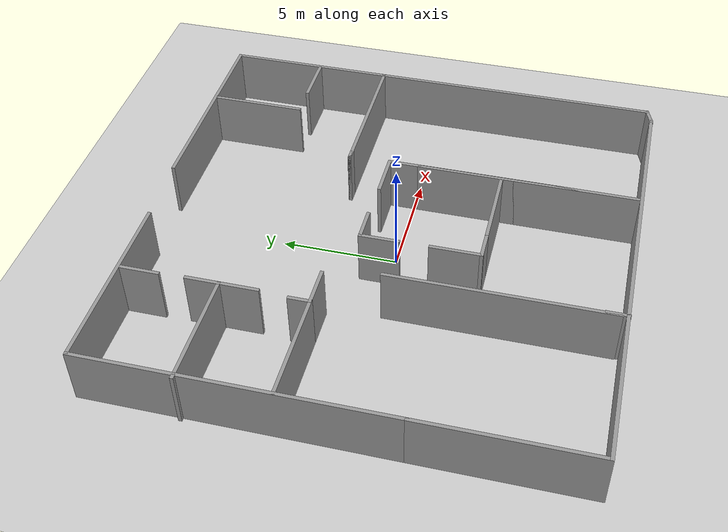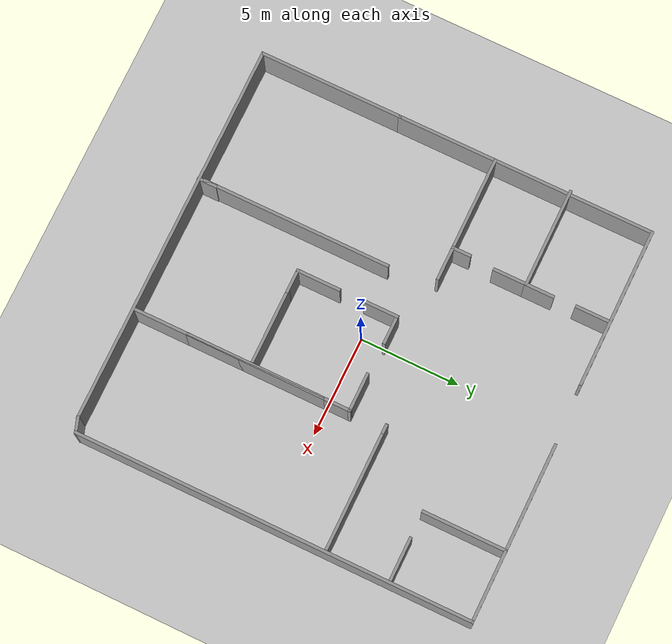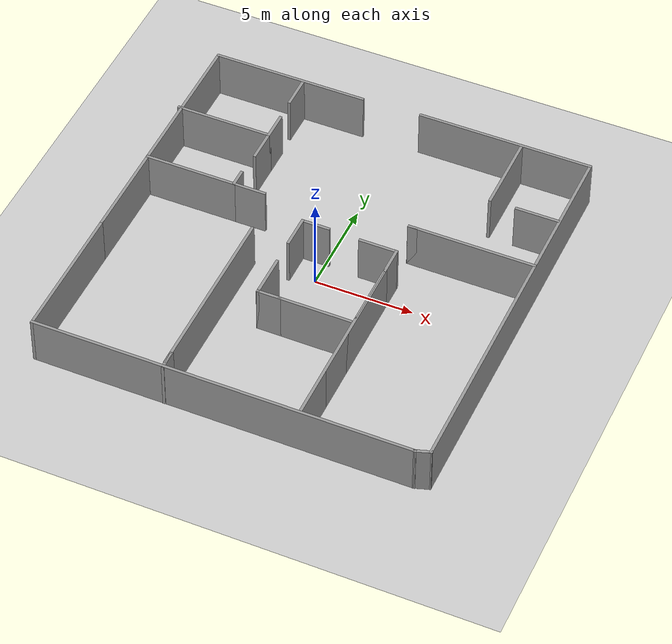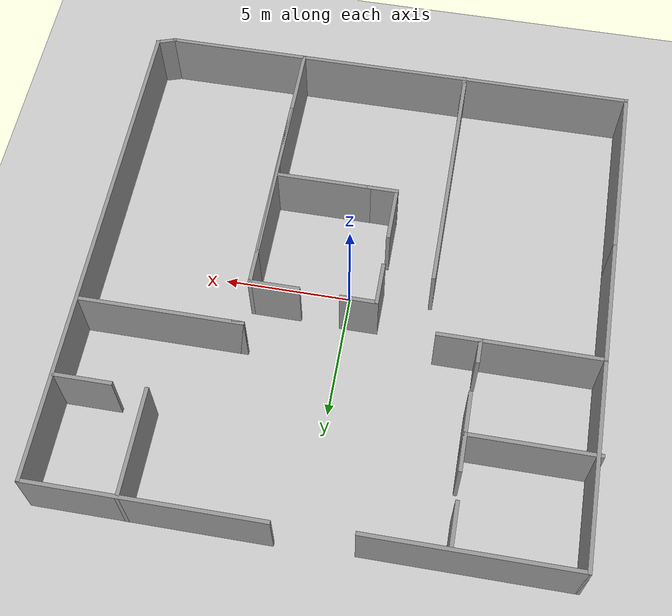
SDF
<sdf version="1.7">
 <world name="world">
  <gravity>0 0 -9.8</gravity>
  <physics name="default_physics" default="0" type="ode">
   <max_step_size>0.001</max_step_size>
   <real_time_factor>1</real_time_factor>
   <real_time_update_rate>1000</real_time_update_rate>
  </physics>
  <scene><ambient>0.6 0.6 0.6 1</ambient><background>0.4 0.4 0.4 1</background><shadows>0</shadows></scene>
  <light name="sun" type="directional">
   <pose>0 0 10 0 -0 0</pose>
   <diffuse>0.8 0.8 0.8 1</diffuse>
   <specular>0.2 0.2 0.2 1</specular>
   <attenuation>
    <range>1000</range>
    <constant>0.9</constant>
    <linear>0.01</linear>
    <quadratic>0.001</quadratic>
   </attenuation>
   <direction>-0.5 0.1 -0.9</direction>
   <spot><inner_angle>0</inner_angle><outer_angle>0</outer_angle><falloff>0</falloff></spot>
  </light>
  <model name="ground_plane">
   <static>1</static>
   <link name="link">
    <collision name="collision">
     <geometry><plane><normal>0 0 1</normal><size>100 100</size></plane></geometry>
     <surface>
      <contact><collide_bitmask>65535</collide_bitmask></contact>
      <friction><ode><mu>100</mu><mu2>50</mu2></ode></friction>
     </surface>
    </collision>
    <visual name="visual">
     <cast_shadows>0</cast_shadows>
     <geometry><plane><normal>0 0 1</normal><size>100 100</size></plane></geometry>
     <material>
      <script><uri>file://media/materials/scripts/gazebo.material</uri><name>Gazebo/Grey</name></script>
     </material>
    </visual>
   </link>
   <pose>0 0 -0.1 0 -0 0</pose>
  </model>
  <magnetic_field>6e-06 2.3e-05 -4.2e-05</magnetic_field>
  <atmosphere type="adiabatic"/>
  <spherical_coordinates>
   <surface_model>EARTH_WGS84</surface_model>
   <latitude_deg>0</latitude_deg>
   <longitude_deg>0</longitude_deg>
   <elevation>0</elevation>
   <heading_deg>0</heading_deg>
  </spherical_coordinates>
  <model name="hospitalI_n1">
   <pose>-0.034094 0.213805 0 0 -0 0</pose>
   <link name="Wall_10">
    <collision name="Wall_10_Collision">
     <geometry><box><size>19.25 0.15 2.5</size></box></geometry>
     <pose>0 0 1.25 0 -0 0</pose>
    </collision>
    <visual name="Wall_10_Visual">
     <pose>0 0 1.25 0 -0 0</pose>
     <geometry><box><size>19.25 0.15 2.5</size></box></geometry>
     <material>
      <script><uri>file://media/materials/scripts/gazebo.material</uri><name>Gazebo/Grey</name></script>
      <ambient>1 1 1 1</ambient>
     </material>
     <meta><layer>0</layer></meta>
    </visual>
    <pose>-0.279487 -10.0291 0 0 -0 0</pose>
   </link>
   <link name="Wall_23">
    <collision name="Wall_23_Collision">
     <geometry><box><size>9 0.15 2.5</size></box></geometry>
     <pose>0 0 1.25 0 -0 0</pose>
    </collision>
    <visual name="Wall_23_Visual">
     <pose>0 0 1.25 0 -0 0</pose>
     <geometry><box><size>9 0.15 2.5</size></box></geometry>
     <material>
      <script><uri>file://media/materials/scripts/gazebo.material</uri><name>Gazebo/Grey</name></script>
      <ambient>1 1 1 1</ambient>
     </material>
     <meta><layer>0</layer></meta>
    </visual>
    <pose>5.52272 10.0461 0 0 -0 0</pose>
   </link>
   <link name="Wall_24">
    <collision name="Wall_24_Collision">
     <geometry><box><size>20 0.15 2.5</size></box></geometry>
     <pose>0 0 1.25 0 -0 0</pose>
    </collision>
    <visual name="Wall_24_Visual">
     <pose>0 0 1.25 0 -0 0</pose>
     <geometry><box><size>20 0.15 2.5</size></box></geometry>
     <material>
      <script><uri>file://media/materials/scripts/gazebo.material</uri><name>Gazebo/Grey</name></script>
      <ambient>1 1 1 1</ambient>
     </material>
     <meta><layer>0</layer></meta>
    </visual>
    <pose>9.94772 0.1211 0 0 -0 -1.5708</pose>
   </link>
   <link name="Wall_25">
    <collision name="Wall_25_Collision">
     <geometry><box><size>0.863682 0.15 2.5</size></box></geometry>
     <pose>0 0 1.25 0 -0 0</pose>
    </collision>
    <visual name="Wall_25_Visual">
     <pose>0 0 1.25 0 -0 0</pose>
     <geometry><box><size>0.863682 0.15 2.5</size></box></geometry>
     <material>
      <script><uri>file://media/materials/scripts/gazebo.material</uri><name>Gazebo/Grey</name></script>
      <ambient>1 1 1 1</ambient>
     </material>
     <meta><layer>0</layer></meta>
    </visual>
    <pose>9.60912 -9.91652 0 0 -0 -2.8205</pose>
   </link>
   <link name="Wall_28">
    <collision name="Wall_28_Collision">
     <geometry><box><size>5 0.15 2.5</size></box></geometry>
     <pose>0 0 1.25 0 -0 0</pose>
    </collision>
    <visual name="Wall_28_Visual">
     <pose>0 0 1.25 0 -0 0</pose>
     <geometry><box><size>5 0.15 2.5</size></box></geometry>
     <material>
      <script><uri>file://media/materials/scripts/gazebo.material</uri><name>Gazebo/Grey</name></script>
      <ambient>1 1 1 1</ambient>
     </material>
     <meta><layer>0</layer></meta>
    </visual>
    <pose>-7.54256 5.71284 0 0 -0 0</pose>
   </link>
   <link name="Wall_29">
    <collision name="Wall_29_Collision">
     <geometry><box><size>1.5 0.15 2.5</size></box></geometry>
     <pose>0 0 1.25 0 -0 0</pose>
    </collision>
    <visual name="Wall_29_Visual">
     <pose>0 0 1.25 0 -0 0</pose>
     <geometry><box><size>1.5 0.15 2.5</size></box></geometry>
     <material>
      <script><uri>file://media/materials/scripts/gazebo.material</uri><name>Gazebo/Grey</name></script>
      <ambient>1 1 1 1</ambient>
     </material>
     <meta><layer>0</layer></meta>
    </visual>
    <pose>-5.11756 6.38785 0 0 -0 1.5708</pose>
   </link>
   <link name="Wall_32">
    <collision name="Wall_32_Collision">
     <geometry><box><size>1.75 0.15 2.5</size></box></geometry>
     <pose>0 0 1.25 0 -0 0</pose>
    </collision>
    <visual name="Wall_32_Visual">
     <pose>0 0 1.25 0 -0 0</pose>
     <geometry><box><size>1.75 0.15 2.5</size></box></geometry>
     <material>
      <script><uri>file://media/materials/scripts/gazebo.material</uri><name>Gazebo/Grey</name></script>
      <ambient>1 1 1 1</ambient>
     </material>
     <meta><layer>0</layer></meta>
    </visual>
    <pose>-5.16406 9.04755 0 0 -0 -1.5708</pose>
   </link>
   <link name="Wall_34">
    <collision name="Wall_34_Collision">
     <geometry><box><size>1.75 0.15 2.5</size></box></geometry>
     <pose>0 0 1.25 0 -0 0</pose>
    </collision>
    <visual name="Wall_34_Visual">
     <pose>0 0 1.25 0 -0 0</pose>
     <geometry><box><size>1.75 0.15 2.5</size></box></geometry>
     <material>
      <script><uri>file://media/materials/scripts/gazebo.material</uri><name>Gazebo/Grey</name></script>
      <ambient>1 1 1 1</ambient>
     </material>
     <meta><layer>0</layer></meta>
    </visual>
    <pose>-5.11756 4.91284 0 0 -0 -1.5708</pose>
   </link>
   <link name="Wall_39">
    <collision name="Wall_39_Collision">
     <geometry><box><size>4.75 0.15 2.5</size></box></geometry>
     <pose>0 0 1.25 0 -0 0</pose>
    </collision>
    <visual name="Wall_39_Visual">
     <pose>0 0 1.25 0 -0 0</pose>
     <geometry><box><size>4.75 0.15 2.5</size></box></geometry>
     <material>
      <script><uri>file://media/materials/scripts/gazebo.material</uri><name>Gazebo/Grey</name></script>
      <ambient>1 1 1 1</ambient>
     </material>
     <meta><layer>0</layer></meta>
    </visual>
    <pose>-7.52254 1.9504 0 0 -0 0</pose>
   </link>
   <link name="Wall_4">
    <collision name="Wall_4_Collision">
     <geometry><box><size>13 0.15 2.5</size></box></geometry>
     <pose>0 0 1.25 0 -0 0</pose>
    </collision>
    <visual name="Wall_4_Visual">
     <pose>0 0 1.25 0 -0 0</pose>
     <geometry><box><size>13 0.15 2.5</size></box></geometry>
     <material>
      <script><uri>file://media/materials/scripts/gazebo.material</uri><name>Gazebo/Grey</name></script>
      <ambient>1 1 1 1</ambient>
     </material>
     <meta><layer>0</layer></meta>
    </visual>
    <pose>-9.82949 3.49586 0 0 -0 1.5708</pose>
   </link>
   <link name="Wall_42">
    <collision name="Wall_42_Collision">
     <geometry><box><size>1 0.15 2.5</size></box></geometry>
     <pose>0 0 1.25 0 -0 0</pose>
    </collision>
    <visual name="Wall_42_Visual">
     <pose>0 0 1.25 0 -0 0</pose>
     <geometry><box><size>1 0.15 2.5</size></box></geometry>
     <material>
      <script><uri>file://media/materials/scripts/gazebo.material</uri><name>Gazebo/Grey</name></script>
      <ambient>1 1 1 1</ambient>
     </material>
     <meta><layer>0</layer></meta>
    </visual>
    <pose>-5.22254 2.3754 0 0 -0 1.5708</pose>
   </link>
   <link name="Wall_45">
    <collision name="Wall_45_Collision">
     <geometry><box><size>1.75 0.15 2.5</size></box></geometry>
     <pose>0 0 1.25 0 -0 0</pose>
    </collision>
    <visual name="Wall_45_Visual">
     <pose>0 0 1.25 0 -0 0</pose>
     <geometry><box><size>1.75 0.15 2.5</size></box></geometry>
     <material>
      <script><uri>file://media/materials/scripts/gazebo.material</uri><name>Gazebo/Grey</name></script>
      <ambient>1 1 1 1</ambient>
     </material>
     <meta><layer>0</layer></meta>
    </visual>
    <pose>-4.42254 1.9504 0 0 -0 0</pose>
   </link>
   <link name="Wall_5">
    <collision name="Wall_5_Collision">
     <geometry><box><size>8 0.15 2.5</size></box></geometry>
     <pose>0 0 1.25 0 -0 0</pose>
    </collision>
    <visual name="Wall_5_Visual">
     <pose>0 0 1.25 0 -0 0</pose>
     <geometry><box><size>8 0.15 2.5</size></box></geometry>
     <material>
      <script><uri>file://media/materials/scripts/gazebo.material</uri><name>Gazebo/Grey</name></script>
      <ambient>1 1 1 1</ambient>
     </material>
     <meta><layer>0</layer></meta>
    </visual>
    <pose>-5.90449 9.92086 0 0 -0 0</pose>
   </link>
   <link name="Wall_50">
    <collision name="Wall_50_Collision">
     <geometry><box><size>9.5 0.15 2.5</size></box></geometry>
     <pose>0 0 1.25 0 -0 0</pose>
    </collision>
    <visual name="Wall_50_Visual">
     <pose>0 0 1.25 0 -0 0</pose>
     <geometry><box><size>9.5 0.15 2.5</size></box></geometry>
     <material>
      <script><uri>file://media/materials/scripts/gazebo.material</uri><name>Gazebo/Grey</name></script>
      <ambient>1 1 1 1</ambient>
     </material>
     <meta><layer>0</layer></meta>
    </visual>
    <pose>-3.15782 -5.084 0 0 -0 1.5708</pose>
   </link>
   <link name="Wall_53">
    <collision name="Wall_53_Collision">
     <geometry><box><size>1 0.15 2.5</size></box></geometry>
     <pose>0 0 1.25 0 -0 0</pose>
    </collision>
    <visual name="Wall_53_Visual">
     <pose>0 0 1.25 0 -0 0</pose>
     <geometry><box><size>1 0.15 2.5</size></box></geometry>
     <material>
      <script><uri>file://media/materials/scripts/gazebo.material</uri><name>Gazebo/Grey</name></script>
      <ambient>1 1 1 1</ambient>
     </material>
     <meta><layer>0</layer></meta>
    </visual>
    <pose>-3.12626 -9.62334 0 0 -0 1.5708</pose>
   </link>
   <link name="Wall_56">
    <collision name="Wall_56_Collision">
     <geometry><box><size>7 0.15 2.5</size></box></geometry>
     <pose>0 0 1.25 0 -0 0</pose>
    </collision>
    <visual name="Wall_56_Visual">
     <pose>0 0 1.25 0 -0 0</pose>
     <geometry><box><size>7 0.15 2.5</size></box></geometry>
     <material>
      <script><uri>file://media/materials/scripts/gazebo.material</uri><name>Gazebo/Grey</name></script>
      <ambient>1 1 1 1</ambient>
     </material>
     <meta><layer>0</layer></meta>
    </visual>
    <pose>3.67586 -3.81789 0 0 -0 1.5708</pose>
   </link>
   <link name="Wall_57">
    <collision name="Wall_57_Collision">
     <geometry><box><size>9.75 0.15 2.5</size></box></geometry>
     <pose>0 0 1.25 0 -0 0</pose>
    </collision>
    <visual name="Wall_57_Visual">
     <pose>0 0 1.25 0 -0 0</pose>
     <geometry><box><size>9.75 0.15 2.5</size></box></geometry>
     <material>
      <script><uri>file://media/materials/scripts/gazebo.material</uri><name>Gazebo/Grey</name></script>
      <ambient>1 1 1 1</ambient>
     </material>
     <meta><layer>0</layer></meta>
    </visual>
    <pose>3.67586 -5.19289 0 0 -0 -1.5708</pose>
   </link>
   <link name="Wall_59">
    <collision name="Wall_59_Collision">
     <geometry><box><size>0.5 0.15 2.5</size></box></geometry>
     <pose>0 0 1.25 0 -0 0</pose>
    </collision>
    <visual name="Wall_59_Visual">
     <pose>0 0 1.25 0 -0 0</pose>
     <geometry><box><size>0.5 0.15 2.5</size></box></geometry>
     <material>
      <script><uri>file://media/materials/scripts/gazebo.material</uri><name>Gazebo/Grey</name></script>
      <ambient>1 1 1 1</ambient>
     </material>
     <meta><layer>0</layer></meta>
    </visual>
    <pose>3.75146 2.75014 0 0 -0 3.14159</pose>
   </link>
   <link name="Wall_60">
    <collision name="Wall_60_Collision">
     <geometry><box><size>6.5 0.15 2.5</size></box></geometry>
     <pose>0 0 1.25 0 -0 0</pose>
    </collision>
    <visual name="Wall_60_Visual">
     <pose>0 0 1.25 0 -0 0</pose>
     <geometry><box><size>6.5 0.15 2.5</size></box></geometry>
     <material>
      <script><uri>file://media/materials/scripts/gazebo.material</uri><name>Gazebo/Grey</name></script>
      <ambient>1 1 1 1</ambient>
     </material>
     <meta><layer>0</layer></meta>
    </visual>
    <pose>6.75146 2.75014 0 0 -0 0</pose>
   </link>
   <link name="Wall_62">
    <collision name="Wall_62_Collision">
     <geometry><box><size>1.5 0.15 2.5</size></box></geometry>
     <pose>0 0 1.25 0 -0 0</pose>
    </collision>
    <visual name="Wall_62_Visual">
     <pose>0 0 1.25 0 -0 0</pose>
     <geometry><box><size>1.5 0.15 2.5</size></box></geometry>
     <material>
      <script><uri>file://media/materials/scripts/gazebo.material</uri><name>Gazebo/Grey</name></script>
      <ambient>1 1 1 1</ambient>
     </material>
     <meta><layer>0</layer></meta>
    </visual>
    <pose>3.67586 0.282108 0 0 -0 1.5708</pose>
   </link>
   <link name="Wall_69">
    <collision name="Wall_69_Collision">
     <geometry><box><size>3.75 0.15 2.5</size></box></geometry>
     <pose>0 0 1.25 0 -0 0</pose>
    </collision>
    <visual name="Wall_69_Visual">
     <pose>0 0 1.25 0 -0 0</pose>
     <geometry><box><size>3.75 0.15 2.5</size></box></geometry>
     <material>
      <script><uri>file://media/materials/scripts/gazebo.material</uri><name>Gazebo/Grey</name></script>
      <ambient>1 1 1 1</ambient>
     </material>
     <meta><layer>0</layer></meta>
    </visual>
    <pose>1.7205 -4.01822 0 0 -0 0</pose>
   </link>
   <link name="Wall_7">
    <collision name="Wall_7_Collision">
     <geometry><box><size>7.25 0.15 2.5</size></box></geometry>
     <pose>0 0 1.25 0 -0 0</pose>
    </collision>
    <visual name="Wall_7_Visual">
     <pose>0 0 1.25 0 -0 0</pose>
     <geometry><box><size>7.25 0.15 2.5</size></box></geometry>
     <material>
      <script><uri>file://media/materials/scripts/gazebo.material</uri><name>Gazebo/Grey</name></script>
      <ambient>1 1 1 1</ambient>
     </material>
     <meta><layer>0</layer></meta>
    </visual>
    <pose>-9.82949 -6.47914 0 0 -0 -1.5708</pose>
   </link>
   <link name="Wall_71">
    <collision name="Wall_71_Collision">
     <geometry><box><size>1.25 0.15 2.5</size></box></geometry>
     <pose>0 0 1.25 0 -0 0</pose>
    </collision>
    <visual name="Wall_71_Visual">
     <pose>0 0 1.25 0 -0 0</pose>
     <geometry><box><size>1.25 0.15 2.5</size></box></geometry>
     <material>
      <script><uri>file://media/materials/scripts/gazebo.material</uri><name>Gazebo/Grey</name></script>
      <ambient>1 1 1 1</ambient>
     </material>
     <meta><layer>0</layer></meta>
    </visual>
    <pose>-0.629501 -4.01822 0 0 -0 3.14159</pose>
   </link>
   <link name="Wall_72">
    <collision name="Wall_72_Collision">
     <geometry><box><size>2.25 0.15 2.5</size></box></geometry>
     <pose>0 0 1.25 0 -0 0</pose>
    </collision>
    <visual name="Wall_72_Visual">
     <pose>0 0 1.25 0 -0 0</pose>
     <geometry><box><size>2.25 0.15 2.5</size></box></geometry>
     <material>
      <script><uri>file://media/materials/scripts/gazebo.material</uri><name>Gazebo/Grey</name></script>
      <ambient>1 1 1 1</ambient>
     </material>
     <meta><layer>0</layer></meta>
    </visual>
    <pose>-1.1795 -2.96822 0 0 -0 1.5708</pose>
   </link>
   <link name="Wall_75">
    <collision name="Wall_75_Collision">
     <geometry><box><size>1.75 0.15 2.5</size></box></geometry>
     <pose>0 0 1.25 0 -0 0</pose>
    </collision>
    <visual name="Wall_75_Visual">
     <pose>0 0 1.25 0 -0 0</pose>
     <geometry><box><size>1.75 0.15 2.5</size></box></geometry>
     <material>
      <script><uri>file://media/materials/scripts/gazebo.material</uri><name>Gazebo/Grey</name></script>
      <ambient>1 1 1 1</ambient>
     </material>
     <meta><layer>0</layer></meta>
    </visual>
    <pose>-1.19491 0.224698 0 0 -0 1.5708</pose>
   </link>
   <link name="Wall_76">
    <collision name="Wall_76_Collision">
     <geometry><box><size>1.5 0.15 2.5</size></box></geometry>
     <pose>0 0 1.25 0 -0 0</pose>
    </collision>
    <visual name="Wall_76_Visual">
     <pose>0 0 1.25 0 -0 0</pose>
     <geometry><box><size>1.5 0.15 2.5</size></box></geometry>
     <material>
      <script><uri>file://media/materials/scripts/gazebo.material</uri><name>Gazebo/Grey</name></script>
      <ambient>1 1 1 1</ambient>
     </material>
     <meta><layer>0</layer></meta>
    </visual>
    <pose>-0.519905 1.0247 0 0 -0 0</pose>
   </link>
   <link name="Wall_78">
    <collision name="Wall_78_Collision">
     <geometry><box><size>2 0.15 2.5</size></box></geometry>
     <pose>0 0 1.25 0 -0 0</pose>
    </collision>
    <visual name="Wall_78_Visual">
     <pose>0 0 1.25 0 -0 0</pose>
     <geometry><box><size>2 0.15 2.5</size></box></geometry>
     <material>
      <script><uri>file://media/materials/scripts/gazebo.material</uri><name>Gazebo/Grey</name></script>
      <ambient>1 1 1 1</ambient>
     </material>
     <meta><layer>0</layer></meta>
    </visual>
    <pose>2.75086 0.957108 0 0 -0 3.14159</pose>
   </link>
   <link name="Wall_83">
    <collision name="Wall_83_Collision">
     <geometry><box><size>4.25 0.15 2.5</size></box></geometry>
     <pose>0 0 1.25 0 -0 0</pose>
    </collision>
    <visual name="Wall_83_Visual">
     <pose>0 0 1.25 0 -0 0</pose>
     <geometry><box><size>4.25 0.15 2.5</size></box></geometry>
     <material>
      <script><uri>file://media/materials/scripts/gazebo.material</uri><name>Gazebo/Grey</name></script>
      <ambient>1 1 1 1</ambient>
     </material>
     <meta><layer>0</layer></meta>
    </visual>
    <pose>6.40876 7.99898 0 0 -0 -1.5708</pose>
   </link>
   <link name="Wall_85">
    <collision name="Wall_85_Collision">
     <geometry><box><size>2.25 0.15 2.5</size></box></geometry>
     <pose>0 0 1.25 0 -0 0</pose>
    </collision>
    <visual name="Wall_85_Visual">
     <pose>0 0 1.25 0 -0 0</pose>
     <geometry><box><size>2.25 0.15 2.5</size></box></geometry>
     <material>
      <script><uri>file://media/materials/scripts/gazebo.material</uri><name>Gazebo/Grey</name></script>
      <ambient>1 1 1 1</ambient>
     </material>
     <meta><layer>0</layer></meta>
    </visual>
    <pose>8.80913 5.93922 0 0 -0 0</pose>
   </link>
   <static>1</static>
  </model>
 </world>
</sdf>
